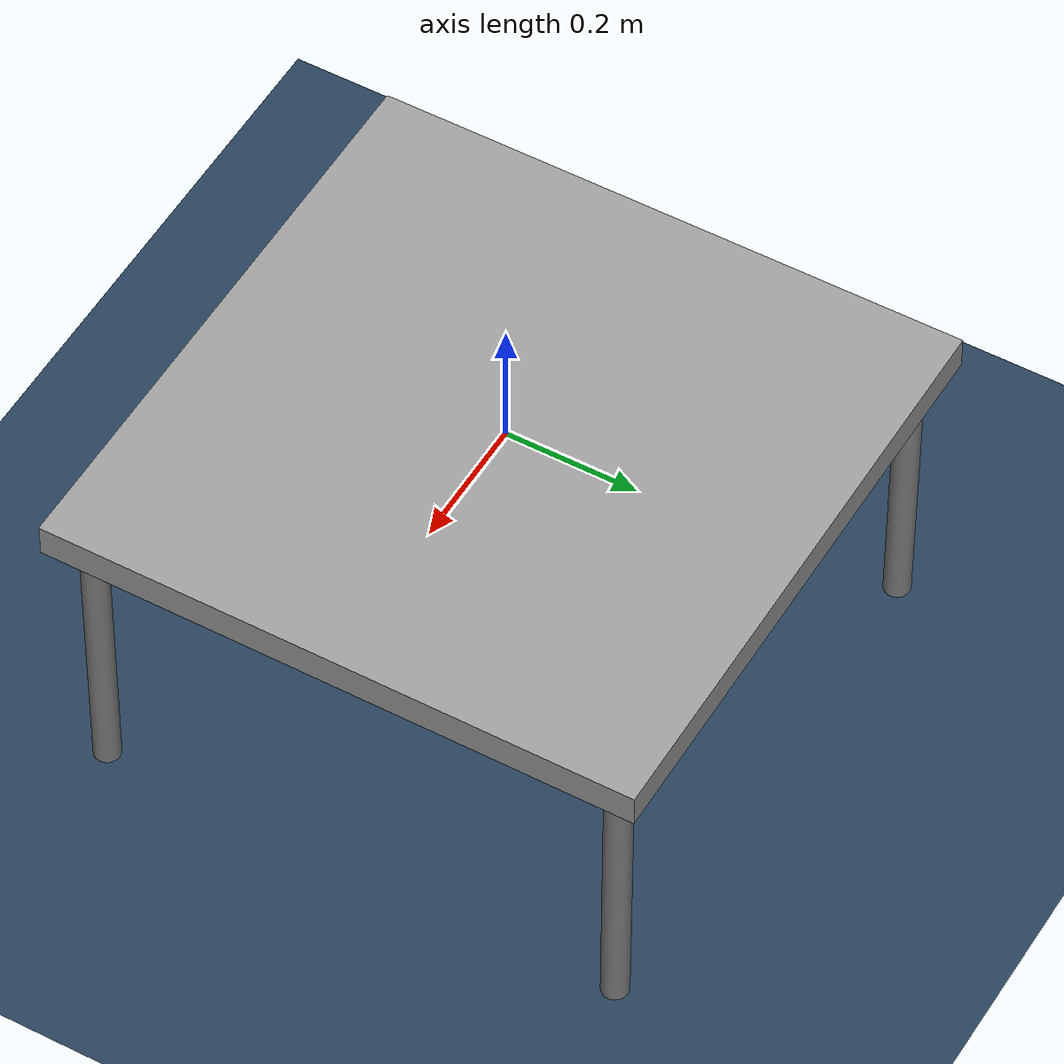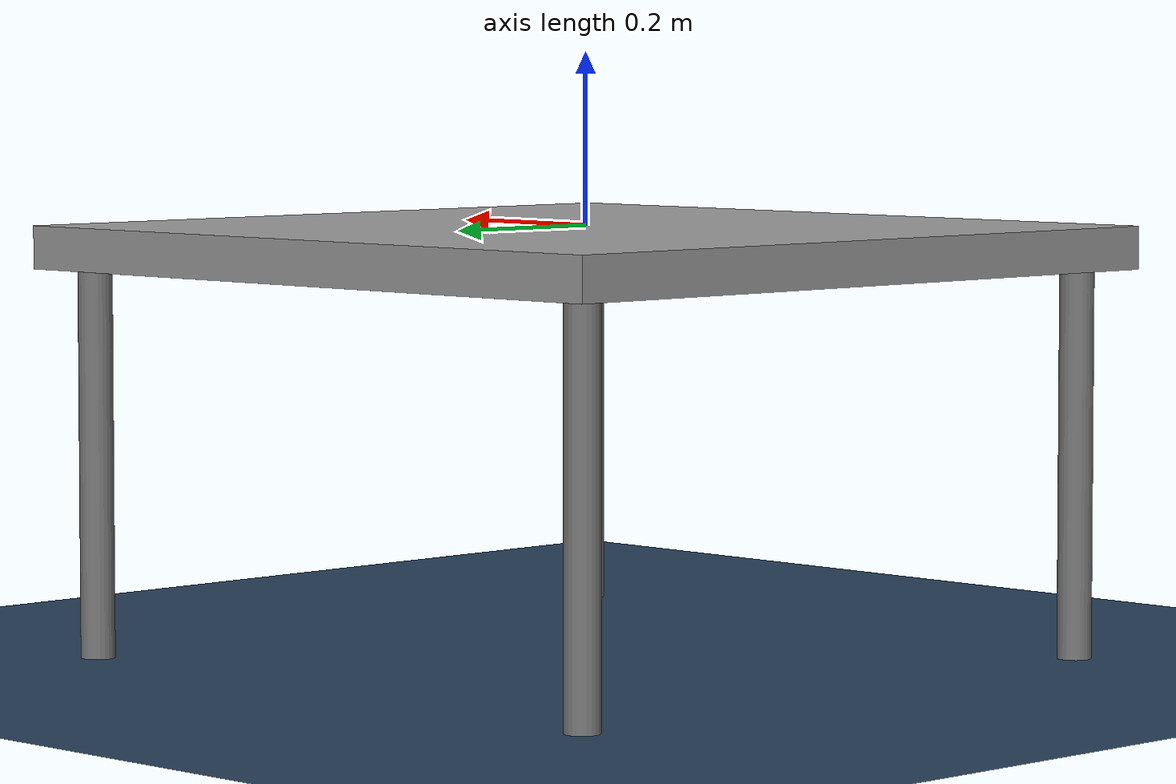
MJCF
<mujoco model="shared assets">
    <compiler angle="radian" meshdir="assets" autolimits="true"/>
    <option impratio="10"/>
    <statistic extent="0.3" center="0.3 0 0"/>

    <visual>
    <rgba haze="0.15 0.25 0.35 1"/>
    <quality shadowsize="8192"/>
    <global azimuth="220" elevation="-30"/>
    </visual>

    <asset>
    <texture type="skybox" builtin="gradient" rgb1="0.3 0.5 0.7" rgb2="0 0 0" width="512" height="3072"/>
    <texture type="2d" name="groundplane" builtin="checker" mark="edge" rgb1="0.2 0.3 0.4" rgb2="0.1 0.2 0.3" markrgb="0.8 0.8 0.8" width="300" height="300"/>
    <material name="groundplane" texture="groundplane" texuniform="true" texrepeat="5 5" reflectance="0.2"/>
    </asset>

    <include file="./shared_xml/shared_shadow_hand_assets.xml"/>

    <worldbody>
        <light pos="0 0 1"/>
        <light pos="0.3 0 1.5" dir="0 0 -1" directional="true"/>
        <geom name="floor" pos="0 0 -0.5" size="0 0 0.05" type="plane" material="groundplane"/>
        <camera name="ego_camera" pos="-0.25 0.35 0.5" mode="targetbody" target="bottle_cap"/>
        <camera name="visualize_camera" pos="0.25 0.35 0.5" mode="targetbody" target="bottle_cap"/>
        <body name="table">
            <geom mass="1e4" rgba="0.61176471 0.61176471 0.61176471 1" pos="0 0 -0.025" size=".45 .45 0.025" type="box" />
            <geom conaffinity="0" contype="0" mass="1e4" pos=".4 .4 -0.251" quat="0 1 0 0" size="0.02 0.25" type="cylinder" />
            <geom conaffinity="0" contype="0" mass="1e4" pos="-.4 .4 -0.251" quat="0 1 0 0" size="0.02 0.25" type="cylinder" />
            <geom conaffinity="0" contype="0" mass="1e4" pos=".4 -.4 -0.251" quat="0 1 0 0" size="0.02 0.25" type="cylinder" />
            <geom conaffinity="0" contype="0" mass="1e4" pos="-.4 -.4 -0.251" quat="0 1 0 0" size="0.02 0.25" type="cylinder" />
        </body>

    </worldbody>

</mujoco>

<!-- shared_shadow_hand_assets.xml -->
<mujoco model="right_shadow_hand_assets">

  <default>
    <default class="right_hand">
      <mesh scale="0.001 0.001 0.001"/>
      <joint axis="1 0 0" damping="0.05" armature="0.0002" frictionloss="0.01"/>
      <position forcerange="-1 1"/>

      <default class="wrist">
        <joint damping="0.5"/>
        <default class="wrist_y">
          <joint axis="0 1 0" range="-0.523599 0.174533"/>
          <position kp="10" ctrlrange="-0.523599 0.174533" forcerange="-10 10"/>
        </default>
        <default class="wrist_x">
          <joint range="-0.698132 0.488692"/>
          <position kp="8" ctrlrange="-0.698132 0.488692" forcerange="-5 5"/>
        </default>
      </default>

      <default class="thumb">
        <default class="thbase">
          <joint axis="0 0 -1" range="-1.0472 1.0472"/>
          <position kp="0.4" ctrlrange="-1.0472 1.0472" forcerange="-3 3"/>
        </default>
        <default class="thproximal">
          <joint range="0 1.22173"/>
          <position ctrlrange="0 1.22173" forcerange="-2 2"/>
        </default>
        <default class="thhub">
          <joint range="-0.20944 0.20944"/>
          <position kp="0.5" ctrlrange="-0.20944 0.20944"/>
        </default>
        <default class="thmiddle">
          <joint axis="0 -1 0" range="-0.698132 0.698132"/>
          <position kp="1.5" ctrlrange="-0.698132 0.698132"/>
        </default>
        <default class="thdistal">
          <joint range="-0.261799 1.5708"/>
          <position ctrlrange="-0.261799 1.5708"/>
        </default>
      </default>

      <default class="metacarpal">
        <joint axis="0.573576 0 0.819152" range="0 0.785398"/>
        <position ctrlrange="0 0.785398"/>
      </default>
      <default class="knuckle">
        <joint axis="0 -1 0" range="-0.349066 0.349066"/>
        <position ctrlrange="-0.349066 0.349066"/>
      </default>
      <default class="proximal">
        <joint range="-0.261799 1.5708"/>
        <position ctrlrange="-0.261799 1.5708"/>
      </default>
      <default class="middle_distal">
        <joint range="0 1.5708"/>
        <position kp="0.5" ctrlrange="0 3.1415"/>
      </default>

      <default class="plastic">
        <geom solimp="0.5 0.99 0.0001" solref="0.005 1"/>
        <default class="plastic_visual">
          <geom type="mesh" material="black" contype="0" conaffinity="0" group="2"/>
        </default>
        <default class="plastic_collision">
          <geom group="3"/>
        </default>
      </default>
    </default>
  </default>

  <asset>
    <material name="black" specular="0.5" shininess="0.25" rgba="0.16355 0.16355 0.16355 1"/>
    <material name="gray" specular="0.0" shininess="0.25" rgba="0.80848 0.80848 0.80848 1"/>
    <material name="metallic" specular="0" shininess="0.25" rgba="0.9 0.9 0.9 1"/>

    <mesh class="right_hand" file="forearm_0.obj"/>
    <mesh class="right_hand" file="forearm_1.obj"/>
    <mesh class="right_hand" file="forearm_collision.obj"/>
    <mesh class="right_hand" file="wrist.obj"/>
    <mesh class="right_hand" file="palm.obj"/>
    <mesh class="right_hand" file="f_knuckle.obj"/>
    <mesh class="right_hand" file="f_proximal.obj"/>
    <mesh class="right_hand" file="f_middle.obj"/>
    <mesh class="right_hand" file="f_distal_pst.obj"/>
    <mesh class="right_hand" file="lf_metacarpal.obj"/>
    <mesh class="right_hand" file="th_proximal.obj"/>
    <mesh class="right_hand" file="th_middle.obj"/>
    <mesh class="right_hand" file="th_distal_pst.obj"/>
  </asset>

  <contact>
    <exclude body1="rh_wrist" body2="rh_forearm"/>
    <exclude body1="rh_thproximal" body2="rh_thmiddle"/>
  </contact>

  <tendon>
    <fixed name="rh_FFJ0">
      <joint joint="rh_FFJ2" coef="1"/>
      <joint joint="rh_FFJ1" coef="1"/>
    </fixed>
    <fixed name="rh_MFJ0">
      <joint joint="rh_MFJ2" coef="1"/>
      <joint joint="rh_MFJ1" coef="1"/>
    </fixed>
    <fixed name="rh_RFJ0">
      <joint joint="rh_RFJ2" coef="1"/>
      <joint joint="rh_RFJ1" coef="1"/>
    </fixed>
    <fixed name="rh_LFJ0">
      <joint joint="rh_LFJ2" coef="1"/>
      <joint joint="rh_LFJ1" coef="1"/>
    </fixed>
  </tendon>

  <actuator>
    <position name="rh_A_WRJ2" joint="rh_WRJ2" class="wrist_y"/>
    <position name="rh_A_WRJ1" joint="rh_WRJ1" class="wrist_x"/>
    <position name="rh_A_THJ5" joint="rh_THJ5" class="thbase"/>
    <position name="rh_A_THJ4" joint="rh_THJ4" class="thproximal"/>
    <position name="rh_A_THJ3" joint="rh_THJ3" class="thhub"/>
    <position name="rh_A_THJ2" joint="rh_THJ2" class="thmiddle"/>
    <position name="rh_A_THJ1" joint="rh_THJ1" class="thdistal"/>
    <position name="rh_A_FFJ4" joint="rh_FFJ4" class="knuckle"/>
    <position name="rh_A_FFJ3" joint="rh_FFJ3" class="proximal"/>
    <position name="rh_A_FFJ0" tendon="rh_FFJ0" class="middle_distal"/>
    <position name="rh_A_MFJ4" joint="rh_MFJ4" class="knuckle"/>
    <position name="rh_A_MFJ3" joint="rh_MFJ3" class="proximal"/>
    <position name="rh_A_MFJ0" tendon="rh_MFJ0" class="middle_distal"/>
    <position name="rh_A_RFJ4" joint="rh_RFJ4" class="knuckle"/>
    <position name="rh_A_RFJ3" joint="rh_RFJ3" class="proximal"/>
    <position name="rh_A_RFJ0" tendon="rh_RFJ0" class="middle_distal"/>
    <position name="rh_A_LFJ5" joint="rh_LFJ5" class="metacarpal"/>
    <position name="rh_A_LFJ4" joint="rh_LFJ4" class="knuckle"/>
    <position name="rh_A_LFJ3" joint="rh_LFJ3" class="proximal"/>
    <position name="rh_A_LFJ0" tendon="rh_LFJ0" class="middle_distal"/>
  </actuator>
  <sensor>

    <touch name="f_lfdistal" site="fs_lfdistal" noise="0.001" cutoff="10"/>
    <touch name="f_rfdistal" site="fs_rfdistal" noise="0.001" cutoff="10"/>
    <touch name="f_mfdistal" site="fs_mfdistal" noise="0.001" cutoff="10"/>
    <touch name="f_ffdistal" site="fs_ffdistal" noise="0.001" cutoff="10"/>
    <touch name="f_thdistal" site="fs_thdistal" noise="0.001" cutoff="10"/>

    <touch name="f_lfmiddle" site="fs_lfmiddle" noise="0.001" cutoff="10"/>
    <touch name="f_rfmiddle" site="fs_rfmiddle" noise="0.001" cutoff="10"/>
    <touch name="f_mfmiddle" site="fs_mfmiddle" noise="0.001" cutoff="10"/>
    <touch name="f_ffmiddle" site="fs_ffmiddle" noise="0.001" cutoff="10"/>
    <touch name="f_thmiddle" site="fs_thmiddle" noise="0.001" cutoff="10"/>

    <touch name="f_lfproximal" site="fs_lfproximal" noise="0.001" cutoff="10"/>
    <touch name="f_rfproximal" site="fs_rfproximal" noise="0.001" cutoff="10"/>
    <touch name="f_mfproximal" site="fs_mfproximal" noise="0.001" cutoff="10"/>
    <touch name="f_ffproximal" site="fs_ffproximal" noise="0.001" cutoff="10"/>
    <touch name="f_thproximal" site="fs_thproximal" noise="0.001" cutoff="10"/>

    <touch name="f_lfknuckle" site="fs_lfknuckle" noise="0.001" cutoff="10"/>
    <touch name="f_rfknuckle" site="fs_rfknuckle" noise="0.001" cutoff="10"/>
    <touch name="f_mfknuckle" site="fs_mfknuckle" noise="0.001" cutoff="10"/>
    <touch name="f_ffknuckle" site="fs_ffknuckle" noise="0.001" cutoff="10"/>
    <touch name="f_palm" site="fs_palm" noise="0.001" cutoff="10"/>

  </sensor>
</mujoco>
